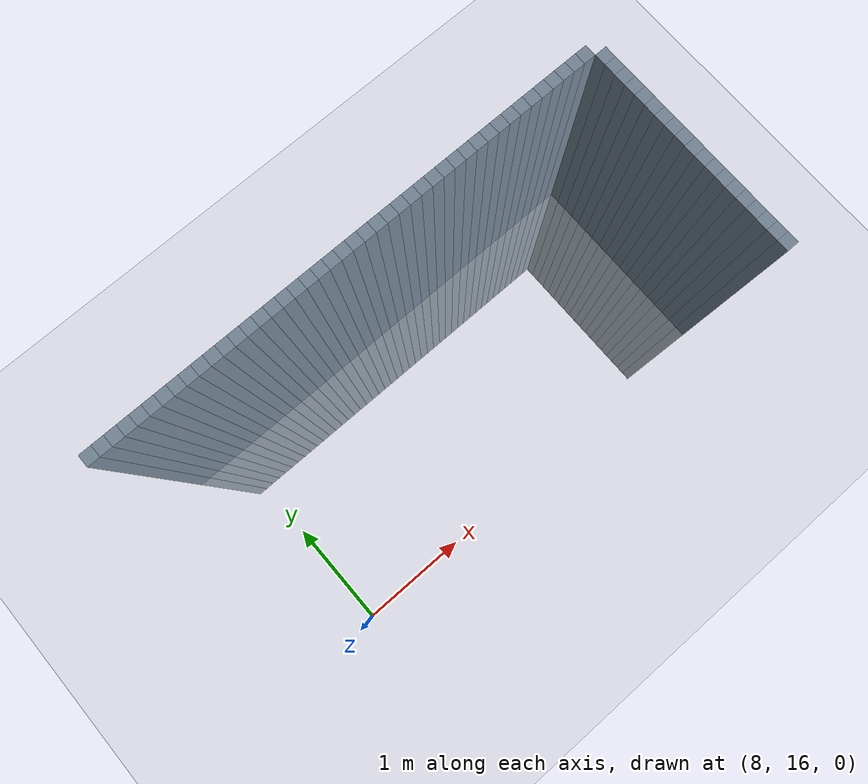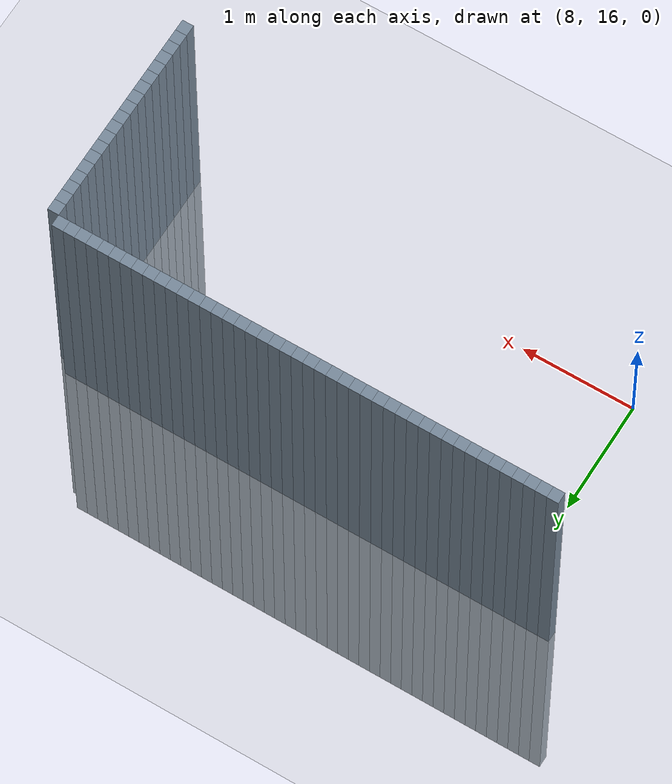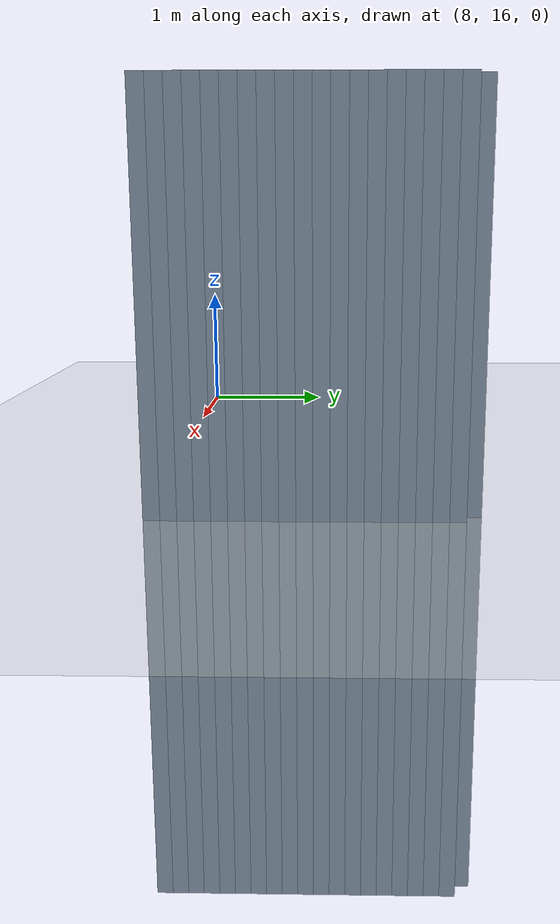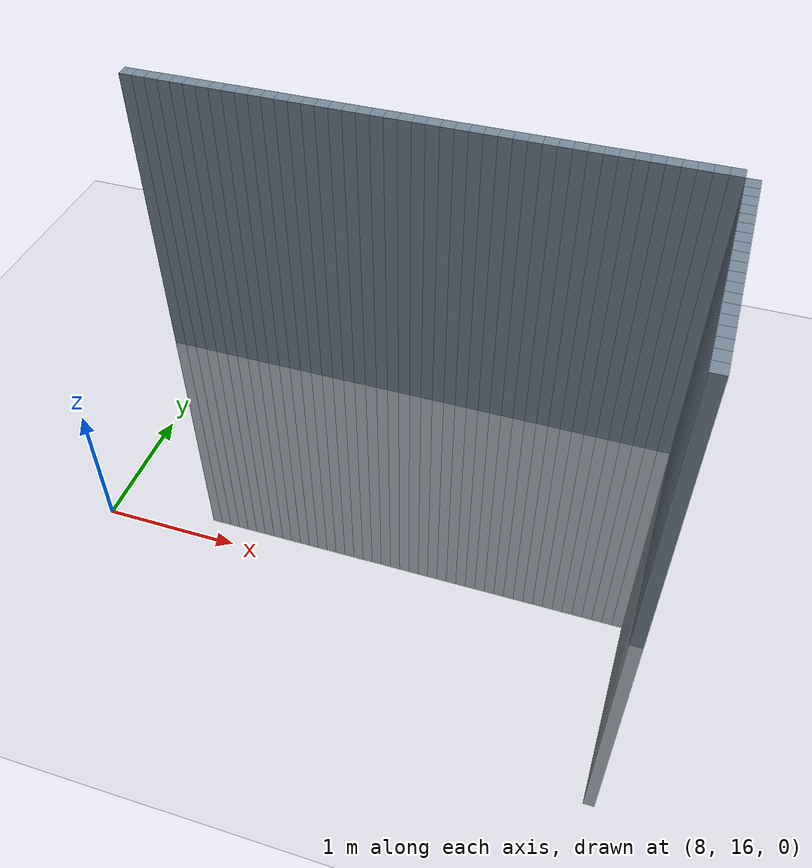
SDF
<sdf version="1.6">
 <world name="default">
  <model name="ground_plane">
   <static>1</static>
   <link name="link">
    <collision name="collision">
     <geometry><plane><normal>0 0 1</normal><size>100 100</size></plane></geometry>
     <surface><friction><ode><mu>100</mu><mu2>50</mu2></ode></friction></surface>
    </collision>
    <visual name="visual">
     <cast_shadows>0</cast_shadows>
     <geometry><plane><normal>0 0 1</normal><size>100 100</size></plane></geometry>
     <material>
      <script><uri>file://media/materials/scripts/gazebo.material</uri><name>Gazebo/Grey</name></script>
     </material>
    </visual>
   </link>
  </model>
  <model name="unit_cylinder_425">
   <static>1</static>
   <pose>7.6 18 0 0 -0 0</pose>
   <link name="link">
    <inertial>
     <mass>1</mass>
     <inertia><ixx>0.145833</ixx><ixy>0</ixy><ixz>0</ixz><iyy>0.145833</iyy><iyz>0</iyz><izz>0.125</izz></inertia>
    </inertial>
    <collision name="collision"><geometry><box><size>0.1 0.1 5</size></box></geometry></collision>
    <visual name="visual">
     <geometry><box><size>0.1 0.1 5</size></box></geometry>
     <material><ambient>0.466667 0.533333 0.6 1</ambient><diffuse>0.466667 0.533333 0.6 1</diffuse></material>
     <material>
      <script><name>Gazebo/Grey</name><uri>file://media/materials/scripts/gazebo.material</uri></script>
     </material>
    </visual>
   </link>
  </model>
  <model name="unit_cylinder_429">
   <static>1</static>
   <pose>7.7 18 0 0 -0 0</pose>
   <link name="link">
    <inertial>
     <mass>1</mass>
     <inertia><ixx>0.145833</ixx><ixy>0</ixy><ixz>0</ixz><iyy>0.145833</iyy><iyz>0</iyz><izz>0.125</izz></inertia>
    </inertial>
    <collision name="collision"><geometry><box><size>0.1 0.1 5</size></box></geometry></collision>
    <visual name="visual">
     <geometry><box><size>0.1 0.1 5</size></box></geometry>
     <material><ambient>0.466667 0.533333 0.6 1</ambient><diffuse>0.466667 0.533333 0.6 1</diffuse></material>
     <material>
      <script><name>Gazebo/Grey</name><uri>file://media/materials/scripts/gazebo.material</uri></script>
     </material>
    </visual>
   </link>
  </model>
  <model name="unit_cylinder_433">
   <static>1</static>
   <pose>7.8 18 0 0 -0 0</pose>
   <link name="link">
    <inertial>
     <mass>1</mass>
     <inertia><ixx>0.145833</ixx><ixy>0</ixy><ixz>0</ixz><iyy>0.145833</iyy><iyz>0</iyz><izz>0.125</izz></inertia>
    </inertial>
    <collision name="collision"><geometry><box><size>0.1 0.1 5</size></box></geometry></collision>
    <visual name="visual">
     <geometry><box><size>0.1 0.1 5</size></box></geometry>
     <material><ambient>0.466667 0.533333 0.6 1</ambient><diffuse>0.466667 0.533333 0.6 1</diffuse></material>
     <material>
      <script><name>Gazebo/Grey</name><uri>file://media/materials/scripts/gazebo.material</uri></script>
     </material>
    </visual>
   </link>
  </model>
  <model name="unit_cylinder_437">
   <static>1</static>
   <pose>7.9 18 0 0 -0 0</pose>
   <link name="link">
    <inertial>
     <mass>1</mass>
     <inertia><ixx>0.145833</ixx><ixy>0</ixy><ixz>0</ixz><iyy>0.145833</iyy><iyz>0</iyz><izz>0.125</izz></inertia>
    </inertial>
    <collision name="collision"><geometry><box><size>0.1 0.1 5</size></box></geometry></collision>
    <visual name="visual">
     <geometry><box><size>0.1 0.1 5</size></box></geometry>
     <material><ambient>0.466667 0.533333 0.6 1</ambient><diffuse>0.466667 0.533333 0.6 1</diffuse></material>
     <material>
      <script><name>Gazebo/Grey</name><uri>file://media/materials/scripts/gazebo.material</uri></script>
     </material>
    </visual>
   </link>
  </model>
  <model name="unit_cylinder_441">
   <static>1</static>
   <pose>8 18 0 0 -0 0</pose>
   <link name="link">
    <inertial>
     <mass>1</mass>
     <inertia><ixx>0.145833</ixx><ixy>0</ixy><ixz>0</ixz><iyy>0.145833</iyy><iyz>0</iyz><izz>0.125</izz></inertia>
    </inertial>
    <collision name="collision"><geometry><box><size>0.1 0.1 5</size></box></geometry></collision>
    <visual name="visual">
     <geometry><box><size>0.1 0.1 5</size></box></geometry>
     <material><ambient>0.466667 0.533333 0.6 1</ambient><diffuse>0.466667 0.533333 0.6 1</diffuse></material>
     <material>
      <script><name>Gazebo/Grey</name><uri>file://media/materials/scripts/gazebo.material</uri></script>
     </material>
    </visual>
   </link>
  </model>
  <model name="unit_cylinder_445">
   <static>1</static>
   <pose>8.1 18 0 0 -0 0</pose>
   <link name="link">
    <inertial>
     <mass>1</mass>
     <inertia><ixx>0.145833</ixx><ixy>0</ixy><ixz>0</ixz><iyy>0.145833</iyy><iyz>0</iyz><izz>0.125</izz></inertia>
    </inertial>
    <collision name="collision"><geometry><box><size>0.1 0.1 5</size></box></geometry></collision>
    <visual name="visual">
     <geometry><box><size>0.1 0.1 5</size></box></geometry>
     <material><ambient>0.466667 0.533333 0.6 1</ambient><diffuse>0.466667 0.533333 0.6 1</diffuse></material>
     <material>
      <script><name>Gazebo/Grey</name><uri>file://media/materials/scripts/gazebo.material</uri></script>
     </material>
    </visual>
   </link>
  </model>
  <model name="unit_cylinder_449">
   <static>1</static>
   <pose>8.2 18 0 0 -0 0</pose>
   <link name="link">
    <inertial>
     <mass>1</mass>
     <inertia><ixx>0.145833</ixx><ixy>0</ixy><ixz>0</ixz><iyy>0.145833</iyy><iyz>0</iyz><izz>0.125</izz></inertia>
    </inertial>
    <collision name="collision"><geometry><box><size>0.1 0.1 5</size></box></geometry></collision>
    <visual name="visual">
     <geometry><box><size>0.1 0.1 5</size></box></geometry>
     <material><ambient>0.466667 0.533333 0.6 1</ambient><diffuse>0.466667 0.533333 0.6 1</diffuse></material>
     <material>
      <script><name>Gazebo/Grey</name><uri>file://media/materials/scripts/gazebo.material</uri></script>
     </material>
    </visual>
   </link>
  </model>
  <model name="unit_cylinder_453">
   <static>1</static>
   <pose>8.3 18 0 0 -0 0</pose>
   <link name="link">
    <inertial>
     <mass>1</mass>
     <inertia><ixx>0.145833</ixx><ixy>0</ixy><ixz>0</ixz><iyy>0.145833</iyy><iyz>0</iyz><izz>0.125</izz></inertia>
    </inertial>
    <collision name="collision"><geometry><box><size>0.1 0.1 5</size></box></geometry></collision>
    <visual name="visual">
     <geometry><box><size>0.1 0.1 5</size></box></geometry>
     <material><ambient>0.466667 0.533333 0.6 1</ambient><diffuse>0.466667 0.533333 0.6 1</diffuse></material>
     <material>
      <script><name>Gazebo/Grey</name><uri>file://media/materials/scripts/gazebo.material</uri></script>
     </material>
    </visual>
   </link>
  </model>
  <model name="unit_cylinder_457">
   <static>1</static>
   <pose>8.4 18 0 0 -0 0</pose>
   <link name="link">
    <inertial>
     <mass>1</mass>
     <inertia><ixx>0.145833</ixx><ixy>0</ixy><ixz>0</ixz><iyy>0.145833</iyy><iyz>0</iyz><izz>0.125</izz></inertia>
    </inertial>
    <collision name="collision"><geometry><box><size>0.1 0.1 5</size></box></geometry></collision>
    <visual name="visual">
     <geometry><box><size>0.1 0.1 5</size></box></geometry>
     <material><ambient>0.466667 0.533333 0.6 1</ambient><diffuse>0.466667 0.533333 0.6 1</diffuse></material>
     <material>
      <script><name>Gazebo/Grey</name><uri>file://media/materials/scripts/gazebo.material</uri></script>
     </material>
    </visual>
   </link>
  </model>
  <model name="unit_cylinder_461">
   <static>1</static>
   <pose>8.5 18 0 0 -0 0</pose>
   <link name="link">
    <inertial>
     <mass>1</mass>
     <inertia><ixx>0.145833</ixx><ixy>0</ixy><ixz>0</ixz><iyy>0.145833</iyy><iyz>0</iyz><izz>0.125</izz></inertia>
    </inertial>
    <collision name="collision"><geometry><box><size>0.1 0.1 5</size></box></geometry></collision>
    <visual name="visual">
     <geometry><box><size>0.1 0.1 5</size></box></geometry>
     <material><ambient>0.466667 0.533333 0.6 1</ambient><diffuse>0.466667 0.533333 0.6 1</diffuse></material>
     <material>
      <script><name>Gazebo/Grey</name><uri>file://media/materials/scripts/gazebo.material</uri></script>
     </material>
    </visual>
   </link>
  </model>
  <model name="unit_cylinder_465">
   <static>1</static>
   <pose>8.6 18 0 0 -0 0</pose>
   <link name="link">
    <inertial>
     <mass>1</mass>
     <inertia><ixx>0.145833</ixx><ixy>0</ixy><ixz>0</ixz><iyy>0.145833</iyy><iyz>0</iyz><izz>0.125</izz></inertia>
    </inertial>
    <collision name="collision"><geometry><box><size>0.1 0.1 5</size></box></geometry></collision>
    <visual name="visual">
     <geometry><box><size>0.1 0.1 5</size></box></geometry>
     <material><ambient>0.466667 0.533333 0.6 1</ambient><diffuse>0.466667 0.533333 0.6 1</diffuse></material>
     <material>
      <script><name>Gazebo/Grey</name><uri>file://media/materials/scripts/gazebo.material</uri></script>
     </material>
    </visual>
   </link>
  </model>
  <model name="unit_cylinder_469">
   <static>1</static>
   <pose>8.7 18 0 0 -0 0</pose>
   <link name="link">
    <inertial>
     <mass>1</mass>
     <inertia><ixx>0.145833</ixx><ixy>0</ixy><ixz>0</ixz><iyy>0.145833</iyy><iyz>0</iyz><izz>0.125</izz></inertia>
    </inertial>
    <collision name="collision"><geometry><box><size>0.1 0.1 5</size></box></geometry></collision>
    <visual name="visual">
     <geometry><box><size>0.1 0.1 5</size></box></geometry>
     <material><ambient>0.466667 0.533333 0.6 1</ambient><diffuse>0.466667 0.533333 0.6 1</diffuse></material>
     <material>
      <script><name>Gazebo/Grey</name><uri>file://media/materials/scripts/gazebo.material</uri></script>
     </material>
    </visual>
   </link>
  </model>
  <model name="unit_cylinder_473">
   <static>1</static>
   <pose>8.8 18 0 0 -0 0</pose>
   <link name="link">
    <inertial>
     <mass>1</mass>
     <inertia><ixx>0.145833</ixx><ixy>0</ixy><ixz>0</ixz><iyy>0.145833</iyy><iyz>0</iyz><izz>0.125</izz></inertia>
    </inertial>
    <collision name="collision"><geometry><box><size>0.1 0.1 5</size></box></geometry></collision>
    <visual name="visual">
     <geometry><box><size>0.1 0.1 5</size></box></geometry>
     <material><ambient>0.466667 0.533333 0.6 1</ambient><diffuse>0.466667 0.533333 0.6 1</diffuse></material>
     <material>
      <script><name>Gazebo/Grey</name><uri>file://media/materials/scripts/gazebo.material</uri></script>
     </material>
    </visual>
   </link>
  </model>
  <model name="unit_cylinder_477">
   <static>1</static>
   <pose>8.9 18 0 0 -0 0</pose>
   <link name="link">
    <inertial>
     <mass>1</mass>
     <inertia><ixx>0.145833</ixx><ixy>0</ixy><ixz>0</ixz><iyy>0.145833</iyy><iyz>0</iyz><izz>0.125</izz></inertia>
    </inertial>
    <collision name="collision"><geometry><box><size>0.1 0.1 5</size></box></geometry></collision>
    <visual name="visual">
     <geometry><box><size>0.1 0.1 5</size></box></geometry>
     <material><ambient>0.466667 0.533333 0.6 1</ambient><diffuse>0.466667 0.533333 0.6 1</diffuse></material>
     <material>
      <script><name>Gazebo/Grey</name><uri>file://media/materials/scripts/gazebo.material</uri></script>
     </material>
    </visual>
   </link>
  </model>
  <model name="unit_cylinder_481">
   <static>1</static>
   <pose>9 18 0 0 -0 0</pose>
   <link name="link">
    <inertial>
     <mass>1</mass>
     <inertia><ixx>0.145833</ixx><ixy>0</ixy><ixz>0</ixz><iyy>0.145833</iyy><iyz>0</iyz><izz>0.125</izz></inertia>
    </inertial>
    <collision name="collision"><geometry><box><size>0.1 0.1 5</size></box></geometry></collision>
    <visual name="visual">
     <geometry><box><size>0.1 0.1 5</size></box></geometry>
     <material><ambient>0.466667 0.533333 0.6 1</ambient><diffuse>0.466667 0.533333 0.6 1</diffuse></material>
     <material>
      <script><name>Gazebo/Grey</name><uri>file://media/materials/scripts/gazebo.material</uri></script>
     </material>
    </visual>
   </link>
  </model>
  <model name="unit_cylinder_485">
   <static>1</static>
   <pose>9.1 18 0 0 -0 0</pose>
   <link name="link">
    <inertial>
     <mass>1</mass>
     <inertia><ixx>0.145833</ixx><ixy>0</ixy><ixz>0</ixz><iyy>0.145833</iyy><iyz>0</iyz><izz>0.125</izz></inertia>
    </inertial>
    <collision name="collision"><geometry><box><size>0.1 0.1 5</size></box></geometry></collision>
    <visual name="visual">
     <geometry><box><size>0.1 0.1 5</size></box></geometry>
     <material><ambient>0.466667 0.533333 0.6 1</ambient><diffuse>0.466667 0.533333 0.6 1</diffuse></material>
     <material>
      <script><name>Gazebo/Grey</name><uri>file://media/materials/scripts/gazebo.material</uri></script>
     </material>
    </visual>
   </link>
  </model>
  <model name="unit_cylinder_489">
   <static>1</static>
   <pose>9.2 18 0 0 -0 0</pose>
   <link name="link">
    <inertial>
     <mass>1</mass>
     <inertia><ixx>0.145833</ixx><ixy>0</ixy><ixz>0</ixz><iyy>0.145833</iyy><iyz>0</iyz><izz>0.125</izz></inertia>
    </inertial>
    <collision name="collision"><geometry><box><size>0.1 0.1 5</size></box></geometry></collision>
    <visual name="visual">
     <geometry><box><size>0.1 0.1 5</size></box></geometry>
     <material><ambient>0.466667 0.533333 0.6 1</ambient><diffuse>0.466667 0.533333 0.6 1</diffuse></material>
     <material>
      <script><name>Gazebo/Grey</name><uri>file://media/materials/scripts/gazebo.material</uri></script>
     </material>
    </visual>
   </link>
  </model>
  <model name="unit_cylinder_493">
   <static>1</static>
   <pose>9.3 18 0 0 -0 0</pose>
   <link name="link">
    <inertial>
     <mass>1</mass>
     <inertia><ixx>0.145833</ixx><ixy>0</ixy><ixz>0</ixz><iyy>0.145833</iyy><iyz>0</iyz><izz>0.125</izz></inertia>
    </inertial>
    <collision name="collision"><geometry><box><size>0.1 0.1 5</size></box></geometry></collision>
    <visual name="visual">
     <geometry><box><size>0.1 0.1 5</size></box></geometry>
     <material><ambient>0.466667 0.533333 0.6 1</ambient><diffuse>0.466667 0.533333 0.6 1</diffuse></material>
     <material>
      <script><name>Gazebo/Grey</name><uri>file://media/materials/scripts/gazebo.material</uri></script>
     </material>
    </visual>
   </link>
  </model>
  <model name="unit_cylinder_497">
   <static>1</static>
   <pose>9.4 18 0 0 -0 0</pose>
   <link name="link">
    <inertial>
     <mass>1</mass>
     <inertia><ixx>0.145833</ixx><ixy>0</ixy><ixz>0</ixz><iyy>0.145833</iyy><iyz>0</iyz><izz>0.125</izz></inertia>
    </inertial>
    <collision name="collision"><geometry><box><size>0.1 0.1 5</size></box></geometry></collision>
    <visual name="visual">
     <geometry><box><size>0.1 0.1 5</size></box></geometry>
     <material><ambient>0.466667 0.533333 0.6 1</ambient><diffuse>0.466667 0.533333 0.6 1</diffuse></material>
     <material>
      <script><name>Gazebo/Grey</name><uri>file://media/materials/scripts/gazebo.material</uri></script>
     </material>
    </visual>
   </link>
  </model>
  <model name="unit_cylinder_501">
   <static>1</static>
   <pose>9.5 18 0 0 -0 0</pose>
   <link name="link">
    <inertial>
     <mass>1</mass>
     <inertia><ixx>0.145833</ixx><ixy>0</ixy><ixz>0</ixz><iyy>0.145833</iyy><iyz>0</iyz><izz>0.125</izz></inertia>
    </inertial>
    <collision name="collision"><geometry><box><size>0.1 0.1 5</size></box></geometry></collision>
    <visual name="visual">
     <geometry><box><size>0.1 0.1 5</size></box></geometry>
     <material><ambient>0.466667 0.533333 0.6 1</ambient><diffuse>0.466667 0.533333 0.6 1</diffuse></material>
     <material>
      <script><name>Gazebo/Grey</name><uri>file://media/materials/scripts/gazebo.material</uri></script>
     </material>
    </visual>
   </link>
  </model>
  <model name="unit_cylinder_505">
   <static>1</static>
   <pose>9.6 18 0 0 -0 0</pose>
   <link name="link">
    <inertial>
     <mass>1</mass>
     <inertia><ixx>0.145833</ixx><ixy>0</ixy><ixz>0</ixz><iyy>0.145833</iyy><iyz>0</iyz><izz>0.125</izz></inertia>
    </inertial>
    <collision name="collision"><geometry><box><size>0.1 0.1 5</size></box></geometry></collision>
    <visual name="visual">
     <geometry><box><size>0.1 0.1 5</size></box></geometry>
     <material><ambient>0.466667 0.533333 0.6 1</ambient><diffuse>0.466667 0.533333 0.6 1</diffuse></material>
     <material>
      <script><name>Gazebo/Grey</name><uri>file://media/materials/scripts/gazebo.material</uri></script>
     </material>
    </visual>
   </link>
  </model>
  <model name="unit_cylinder_509">
   <static>1</static>
   <pose>9.7 18 0 0 -0 0</pose>
   <link name="link">
    <inertial>
     <mass>1</mass>
     <inertia><ixx>0.145833</ixx><ixy>0</ixy><ixz>0</ixz><iyy>0.145833</iyy><iyz>0</iyz><izz>0.125</izz></inertia>
    </inertial>
    <collision name="collision"><geometry><box><size>0.1 0.1 5</size></box></geometry></collision>
    <visual name="visual">
     <geometry><box><size>0.1 0.1 5</size></box></geometry>
     <material><ambient>0.466667 0.533333 0.6 1</ambient><diffuse>0.466667 0.533333 0.6 1</diffuse></material>
     <material>
      <script><name>Gazebo/Grey</name><uri>file://media/materials/scripts/gazebo.material</uri></script>
     </material>
    </visual>
   </link>
  </model>
  <model name="unit_cylinder_513">
   <static>1</static>
   <pose>9.8 18 0 0 -0 0</pose>
   <link name="link">
    <inertial>
     <mass>1</mass>
     <inertia><ixx>0.145833</ixx><ixy>0</ixy><ixz>0</ixz><iyy>0.145833</iyy><iyz>0</iyz><izz>0.125</izz></inertia>
    </inertial>
    <collision name="collision"><geometry><box><size>0.1 0.1 5</size></box></geometry></collision>
    <visual name="visual">
     <geometry><box><size>0.1 0.1 5</size></box></geometry>
     <material><ambient>0.466667 0.533333 0.6 1</ambient><diffuse>0.466667 0.533333 0.6 1</diffuse></material>
     <material>
      <script><name>Gazebo/Grey</name><uri>file://media/materials/scripts/gazebo.material</uri></script>
     </material>
    </visual>
   </link>
  </model>
  <model name="unit_cylinder_517">
   <static>1</static>
   <pose>9.9 18 0 0 -0 0</pose>
   <link name="link">
    <inertial>
     <mass>1</mass>
     <inertia><ixx>0.145833</ixx><ixy>0</ixy><ixz>0</ixz><iyy>0.145833</iyy><iyz>0</iyz><izz>0.125</izz></inertia>
    </inertial>
    <collision name="collision"><geometry><box><size>0.1 0.1 5</size></box></geometry></collision>
    <visual name="visual">
     <geometry><box><size>0.1 0.1 5</size></box></geometry>
     <material><ambient>0.466667 0.533333 0.6 1</ambient><diffuse>0.466667 0.533333 0.6 1</diffuse></material>
     <material>
      <script><name>Gazebo/Grey</name><uri>file://media/materials/scripts/gazebo.material</uri></script>
     </material>
    </visual>
   </link>
  </model>
  <model name="unit_cylinder_521">
   <static>1</static>
   <pose>10 18 0 0 -0 0</pose>
   <link name="link">
    <inertial>
     <mass>1</mass>
     <inertia><ixx>0.145833</ixx><ixy>0</ixy><ixz>0</ixz><iyy>0.145833</iyy><iyz>0</iyz><izz>0.125</izz></inertia>
    </inertial>
    <collision name="collision"><geometry><box><size>0.1 0.1 5</size></box></geometry></collision>
    <visual name="visual">
     <geometry><box><size>0.1 0.1 5</size></box></geometry>
     <material><ambient>0.466667 0.533333 0.6 1</ambient><diffuse>0.466667 0.533333 0.6 1</diffuse></material>
     <material>
      <script><name>Gazebo/Grey</name><uri>file://media/materials/scripts/gazebo.material</uri></script>
     </material>
    </visual>
   </link>
  </model>
  <model name="unit_cylinder_525">
   <static>1</static>
   <pose>10.1 18 0 0 -0 0</pose>
   <link name="link">
    <inertial>
     <mass>1</mass>
     <inertia><ixx>0.145833</ixx><ixy>0</ixy><ixz>0</ixz><iyy>0.145833</iyy><iyz>0</iyz><izz>0.125</izz></inertia>
    </inertial>
    <collision name="collision"><geometry><box><size>0.1 0.1 5</size></box></geometry></collision>
    <visual name="visual">
     <geometry><box><size>0.1 0.1 5</size></box></geometry>
     <material><ambient>0.466667 0.533333 0.6 1</ambient><diffuse>0.466667 0.533333 0.6 1</diffuse></material>
     <material>
      <script><name>Gazebo/Grey</name><uri>file://media/materials/scripts/gazebo.material</uri></script>
     </material>
    </visual>
   </link>
  </model>
  <model name="unit_cylinder_529">
   <static>1</static>
   <pose>10.2 18 0 0 -0 0</pose>
   <link name="link">
    <inertial>
     <mass>1</mass>
     <inertia><ixx>0.145833</ixx><ixy>0</ixy><ixz>0</ixz><iyy>0.145833</iyy><iyz>0</iyz><izz>0.125</izz></inertia>
    </inertial>
    <collision name="collision"><geometry><box><size>0.1 0.1 5</size></box></geometry></collision>
    <visual name="visual">
     <geometry><box><size>0.1 0.1 5</size></box></geometry>
     <material><ambient>0.466667 0.533333 0.6 1</ambient><diffuse>0.466667 0.533333 0.6 1</diffuse></material>
     <material>
      <script><name>Gazebo/Grey</name><uri>file://media/materials/scripts/gazebo.material</uri></script>
     </material>
    </visual>
   </link>
  </model>
  <model name="unit_cylinder_533">
   <static>1</static>
   <pose>10.3 18 0 0 -0 0</pose>
   <link name="link">
    <inertial>
     <mass>1</mass>
     <inertia><ixx>0.145833</ixx><ixy>0</ixy><ixz>0</ixz><iyy>0.145833</iyy><iyz>0</iyz><izz>0.125</izz></inertia>
    </inertial>
    <collision name="collision"><geometry><box><size>0.1 0.1 5</size></box></geometry></collision>
    <visual name="visual">
     <geometry><box><size>0.1 0.1 5</size></box></geometry>
     <material><ambient>0.466667 0.533333 0.6 1</ambient><diffuse>0.466667 0.533333 0.6 1</diffuse></material>
     <material>
      <script><name>Gazebo/Grey</name><uri>file://media/materials/scripts/gazebo.material</uri></script>
     </material>
    </visual>
   </link>
  </model>
  <model name="unit_cylinder_537">
   <static>1</static>
   <pose>10.4 18 0 0 -0 0</pose>
   <link name="link">
    <inertial>
     <mass>1</mass>
     <inertia><ixx>0.145833</ixx><ixy>0</ixy><ixz>0</ixz><iyy>0.145833</iyy><iyz>0</iyz><izz>0.125</izz></inertia>
    </inertial>
    <collision name="collision"><geometry><box><size>0.1 0.1 5</size></box></geometry></collision>
    <visual name="visual">
     <geometry><box><size>0.1 0.1 5</size></box></geometry>
     <material><ambient>0.466667 0.533333 0.6 1</ambient><diffuse>0.466667 0.533333 0.6 1</diffuse></material>
     <material>
      <script><name>Gazebo/Grey</name><uri>file://media/materials/scripts/gazebo.material</uri></script>
     </material>
    </visual>
   </link>
  </model>
  <model name="unit_cylinder_541">
   <static>1</static>
   <pose>10.5 18 0 0 -0 0</pose>
   <link name="link">
    <inertial>
     <mass>1</mass>
     <inertia><ixx>0.145833</ixx><ixy>0</ixy><ixz>0</ixz><iyy>0.145833</iyy><iyz>0</iyz><izz>0.125</izz></inertia>
    </inertial>
    <collision name="collision"><geometry><box><size>0.1 0.1 5</size></box></geometry></collision>
    <visual name="visual">
     <geometry><box><size>0.1 0.1 5</size></box></geometry>
     <material><ambient>0.466667 0.533333 0.6 1</ambient><diffuse>0.466667 0.533333 0.6 1</diffuse></material>
     <material>
      <script><name>Gazebo/Grey</name><uri>file://media/materials/scripts/gazebo.material</uri></script>
     </material>
    </visual>
   </link>
  </model>
  <model name="unit_cylinder_545">
   <static>1</static>
   <pose>10.6 18 0 0 -0 0</pose>
   <link name="link">
    <inertial>
     <mass>1</mass>
     <inertia><ixx>0.145833</ixx><ixy>0</ixy><ixz>0</ixz><iyy>0.145833</iyy><iyz>0</iyz><izz>0.125</izz></inertia>
    </inertial>
    <collision name="collision"><geometry><box><size>0.1 0.1 5</size></box></geometry></collision>
    <visual name="visual">
     <geometry><box><size>0.1 0.1 5</size></box></geometry>
     <material><ambient>0.466667 0.533333 0.6 1</ambient><diffuse>0.466667 0.533333 0.6 1</diffuse></material>
     <material>
      <script><name>Gazebo/Grey</name><uri>file://media/materials/scripts/gazebo.material</uri></script>
     </material>
    </visual>
   </link>
  </model>
  <model name="unit_cylinder_549">
   <static>1</static>
   <pose>10.7 18 0 0 -0 0</pose>
   <link name="link">
    <inertial>
     <mass>1</mass>
     <inertia><ixx>0.145833</ixx><ixy>0</ixy><ixz>0</ixz><iyy>0.145833</iyy><iyz>0</iyz><izz>0.125</izz></inertia>
    </inertial>
    <collision name="collision"><geometry><box><size>0.1 0.1 5</size></box></geometry></collision>
    <visual name="visual">
     <geometry><box><size>0.1 0.1 5</size></box></geometry>
     <material><ambient>0.466667 0.533333 0.6 1</ambient><diffuse>0.466667 0.533333 0.6 1</diffuse></material>
     <material>
      <script><name>Gazebo/Grey</name><uri>file://media/materials/scripts/gazebo.material</uri></script>
     </material>
    </visual>
   </link>
  </model>
  <model name="unit_cylinder_553">
   <static>1</static>
   <pose>10.8 18 0 0 -0 0</pose>
   <link name="link">
    <inertial>
     <mass>1</mass>
     <inertia><ixx>0.145833</ixx><ixy>0</ixy><ixz>0</ixz><iyy>0.145833</iyy><iyz>0</iyz><izz>0.125</izz></inertia>
    </inertial>
    <collision name="collision"><geometry><box><size>0.1 0.1 5</size></box></geometry></collision>
    <visual name="visual">
     <geometry><box><size>0.1 0.1 5</size></box></geometry>
     <material><ambient>0.466667 0.533333 0.6 1</ambient><diffuse>0.466667 0.533333 0.6 1</diffuse></material>
     <material>
      <script><name>Gazebo/Grey</name><uri>file://media/materials/scripts/gazebo.material</uri></script>
     </material>
    </visual>
   </link>
  </model>
  <model name="unit_cylinder_557">
   <static>1</static>
   <pose>10.9 18 0 0 -0 0</pose>
   <link name="link">
    <inertial>
     <mass>1</mass>
     <inertia><ixx>0.145833</ixx><ixy>0</ixy><ixz>0</ixz><iyy>0.145833</iyy><iyz>0</iyz><izz>0.125</izz></inertia>
    </inertial>
    <collision name="collision"><geometry><box><size>0.1 0.1 5</size></box></geometry></collision>
    <visual name="visual">
     <geometry><box><size>0.1 0.1 5</size></box></geometry>
     <material><ambient>0.466667 0.533333 0.6 1</ambient><diffuse>0.466667 0.533333 0.6 1</diffuse></material>
     <material>
      <script><name>Gazebo/Grey</name><uri>file://media/materials/scripts/gazebo.material</uri></script>
     </material>
    </visual>
   </link>
  </model>
  <model name="unit_cylinder_561">
   <static>1</static>
   <pose>11 18 0 0 -0 0</pose>
   <link name="link">
    <inertial>
     <mass>1</mass>
     <inertia><ixx>0.145833</ixx><ixy>0</ixy><ixz>0</ixz><iyy>0.145833</iyy><iyz>0</iyz><izz>0.125</izz></inertia>
    </inertial>
    <collision name="collision"><geometry><box><size>0.1 0.1 5</size></box></geometry></collision>
    <visual name="visual">
     <geometry><box><size>0.1 0.1 5</size></box></geometry>
     <material><ambient>0.466667 0.533333 0.6 1</ambient><diffuse>0.466667 0.533333 0.6 1</diffuse></material>
     <material>
      <script><name>Gazebo/Grey</name><uri>file://media/materials/scripts/gazebo.material</uri></script>
     </material>
    </visual>
   </link>
  </model>
  <model name="unit_cylinder_565">
   <static>1</static>
   <pose>11.1 18 0 0 -0 0</pose>
   <link name="link">
    <inertial>
     <mass>1</mass>
     <inertia><ixx>0.145833</ixx><ixy>0</ixy><ixz>0</ixz><iyy>0.145833</iyy><iyz>0</iyz><izz>0.125</izz></inertia>
    </inertial>
    <collision name="collision"><geometry><box><size>0.1 0.1 5</size></box></geometry></collision>
    <visual name="visual">
     <geometry><box><size>0.1 0.1 5</size></box></geometry>
     <material><ambient>0.466667 0.533333 0.6 1</ambient><diffuse>0.466667 0.533333 0.6 1</diffuse></material>
     <material>
      <script><name>Gazebo/Grey</name><uri>file://media/materials/scripts/gazebo.material</uri></script>
     </material>
    </visual>
   </link>
  </model>
  <model name="unit_cylinder_569">
   <static>1</static>
   <pose>11.2 18 0 0 -0 0</pose>
   <link name="link">
    <inertial>
     <mass>1</mass>
     <inertia><ixx>0.145833</ixx><ixy>0</ixy><ixz>0</ixz><iyy>0.145833</iyy><iyz>0</iyz><izz>0.125</izz></inertia>
    </inertial>
    <collision name="collision"><geometry><box><size>0.1 0.1 5</size></box></geometry></collision>
    <visual name="visual">
     <geometry><box><size>0.1 0.1 5</size></box></geometry>
     <material><ambient>0.466667 0.533333 0.6 1</ambient><diffuse>0.466667 0.533333 0.6 1</diffuse></material>
     <material>
      <script><name>Gazebo/Grey</name><uri>file://media/materials/scripts/gazebo.material</uri></script>
     </material>
    </visual>
   </link>
  </model>
  <model name="unit_cylinder_573">
   <static>1</static>
   <pose>11.3 18 0 0 -0 0</pose>
   <link name="link">
    <inertial>
     <mass>1</mass>
     <inertia><ixx>0.145833</ixx><ixy>0</ixy><ixz>0</ixz><iyy>0.145833</iyy><iyz>0</iyz><izz>0.125</izz></inertia>
    </inertial>
    <collision name="collision"><geometry><box><size>0.1 0.1 5</size></box></geometry></collision>
    <visual name="visual">
     <geometry><box><size>0.1 0.1 5</size></box></geometry>
     <material><ambient>0.466667 0.533333 0.6 1</ambient><diffuse>0.466667 0.533333 0.6 1</diffuse></material>
     <material>
      <script><name>Gazebo/Grey</name><uri>file://media/materials/scripts/gazebo.material</uri></script>
     </material>
    </visual>
   </link>
  </model>
  <model name="unit_cylinder_577">
   <static>1</static>
   <pose>11.4 18 0 0 -0 0</pose>
   <link name="link">
    <inertial>
     <mass>1</mass>
     <inertia><ixx>0.145833</ixx><ixy>0</ixy><ixz>0</ixz><iyy>0.145833</iyy><iyz>0</iyz><izz>0.125</izz></inertia>
    </inertial>
    <collision name="collision"><geometry><box><size>0.1 0.1 5</size></box></geometry></collision>
    <visual name="visual">
     <geometry><box><size>0.1 0.1 5</size></box></geometry>
     <material><ambient>0.466667 0.533333 0.6 1</ambient><diffuse>0.466667 0.533333 0.6 1</diffuse></material>
     <material>
      <script><name>Gazebo/Grey</name><uri>file://media/materials/scripts/gazebo.material</uri></script>
     </material>
    </visual>
   </link>
  </model>
  <model name="unit_cylinder_581">
   <static>1</static>
   <pose>11.5 18 0 0 -0 0</pose>
   <link name="link">
    <inertial>
     <mass>1</mass>
     <inertia><ixx>0.145833</ixx><ixy>0</ixy><ixz>0</ixz><iyy>0.145833</iyy><iyz>0</iyz><izz>0.125</izz></inertia>
    </inertial>
    <collision name="collision"><geometry><box><size>0.1 0.1 5</size></box></geometry></collision>
    <visual name="visual">
     <geometry><box><size>0.1 0.1 5</size></box></geometry>
     <material><ambient>0.466667 0.533333 0.6 1</ambient><diffuse>0.466667 0.533333 0.6 1</diffuse></material>
     <material>
      <script><name>Gazebo/Grey</name><uri>file://media/materials/scripts/gazebo.material</uri></script>
     </material>
    </visual>
   </link>
  </model>
  <model name="unit_cylinder_585">
   <static>1</static>
   <pose>11.6 18 0 0 -0 0</pose>
   <link name="link">
    <inertial>
     <mass>1</mass>
     <inertia><ixx>0.145833</ixx><ixy>0</ixy><ixz>0</ixz><iyy>0.145833</iyy><iyz>0</iyz><izz>0.125</izz></inertia>
    </inertial>
    <collision name="collision"><geometry><box><size>0.1 0.1 5</size></box></geometry></collision>
    <visual name="visual">
     <geometry><box><size>0.1 0.1 5</size></box></geometry>
     <material><ambient>0.466667 0.533333 0.6 1</ambient><diffuse>0.466667 0.533333 0.6 1</diffuse></material>
     <material>
      <script><name>Gazebo/Grey</name><uri>file://media/materials/scripts/gazebo.material</uri></script>
     </material>
    </visual>
   </link>
  </model>
  <model name="unit_cylinder_589">
   <static>1</static>
   <pose>11.7 18 0 0 -0 0</pose>
   <link name="link">
    <inertial>
     <mass>1</mass>
     <inertia><ixx>0.145833</ixx><ixy>0</ixy><ixz>0</ixz><iyy>0.145833</iyy><iyz>0</iyz><izz>0.125</izz></inertia>
    </inertial>
    <collision name="collision"><geometry><box><size>0.1 0.1 5</size></box></geometry></collision>
    <visual name="visual">
     <geometry><box><size>0.1 0.1 5</size></box></geometry>
     <material><ambient>0.466667 0.533333 0.6 1</ambient><diffuse>0.466667 0.533333 0.6 1</diffuse></material>
     <material>
      <script><name>Gazebo/Grey</name><uri>file://media/materials/scripts/gazebo.material</uri></script>
     </material>
    </visual>
   </link>
  </model>
  <model name="unit_cylinder_593">
   <static>1</static>
   <pose>11.8 18 0 0 -0 0</pose>
   <link name="link">
    <inertial>
     <mass>1</mass>
     <inertia><ixx>0.145833</ixx><ixy>0</ixy><ixz>0</ixz><iyy>0.145833</iyy><iyz>0</iyz><izz>0.125</izz></inertia>
    </inertial>
    <collision name="collision"><geometry><box><size>0.1 0.1 5</size></box></geometry></collision>
    <visual name="visual">
     <geometry><box><size>0.1 0.1 5</size></box></geometry>
     <material><ambient>0.466667 0.533333 0.6 1</ambient><diffuse>0.466667 0.533333 0.6 1</diffuse></material>
     <material>
      <script><name>Gazebo/Grey</name><uri>file://media/materials/scripts/gazebo.material</uri></script>
     </material>
    </visual>
   </link>
  </model>
  <model name="unit_cylinder_597">
   <static>1</static>
   <pose>11.9 18 0 0 -0 0</pose>
   <link name="link">
    <inertial>
     <mass>1</mass>
     <inertia><ixx>0.145833</ixx><ixy>0</ixy><ixz>0</ixz><iyy>0.145833</iyy><iyz>0</iyz><izz>0.125</izz></inertia>
    </inertial>
    <collision name="collision"><geometry><box><size>0.1 0.1 5</size></box></geometry></collision>
    <visual name="visual">
     <geometry><box><size>0.1 0.1 5</size></box></geometry>
     <material><ambient>0.466667 0.533333 0.6 1</ambient><diffuse>0.466667 0.533333 0.6 1</diffuse></material>
     <material>
      <script><name>Gazebo/Grey</name><uri>file://media/materials/scripts/gazebo.material</uri></script>
     </material>
    </visual>
   </link>
  </model>
  <model name="unit_cylinder_759">
   <static>1</static>
   <pose>12 16.1 0 0 -0 0</pose>
   <link name="link">
    <inertial>
     <mass>1</mass>
     <inertia><ixx>0.145833</ixx><ixy>0</ixy><ixz>0</ixz><iyy>0.145833</iyy><iyz>0</iyz><izz>0.125</izz></inertia>
    </inertial>
    <collision name="collision"><geometry><box><size>0.1 0.1 5</size></box></geometry></collision>
    <visual name="visual">
     <geometry><box><size>0.1 0.1 5</size></box></geometry>
     <material><ambient>0.466667 0.533333 0.6 1</ambient><diffuse>0.466667 0.533333 0.6 1</diffuse></material>
     <material>
      <script><name>Gazebo/Grey</name><uri>file://media/materials/scripts/gazebo.material</uri></script>
     </material>
    </visual>
   </link>
  </model>
  <model name="unit_cylinder_760">
   <static>1</static>
   <pose>12 16.2 0 0 -0 0</pose>
   <link name="link">
    <inertial>
     <mass>1</mass>
     <inertia><ixx>0.145833</ixx><ixy>0</ixy><ixz>0</ixz><iyy>0.145833</iyy><iyz>0</iyz><izz>0.125</izz></inertia>
    </inertial>
    <collision name="collision"><geometry><box><size>0.1 0.1 5</size></box></geometry></collision>
    <visual name="visual">
     <geometry><box><size>0.1 0.1 5</size></box></geometry>
     <material><ambient>0.466667 0.533333 0.6 1</ambient><diffuse>0.466667 0.533333 0.6 1</diffuse></material>
     <material>
      <script><name>Gazebo/Grey</name><uri>file://media/materials/scripts/gazebo.material</uri></script>
     </material>
    </visual>
   </link>
  </model>
  <model name="unit_cylinder_761">
   <static>1</static>
   <pose>12 16.3 0 0 -0 0</pose>
   <link name="link">
    <inertial>
     <mass>1</mass>
     <inertia><ixx>0.145833</ixx><ixy>0</ixy><ixz>0</ixz><iyy>0.145833</iyy><iyz>0</iyz><izz>0.125</izz></inertia>
    </inertial>
    <collision name="collision"><geometry><box><size>0.1 0.1 5</size></box></geometry></collision>
    <visual name="visual">
     <geometry><box><size>0.1 0.1 5</size></box></geometry>
     <material><ambient>0.466667 0.533333 0.6 1</ambient><diffuse>0.466667 0.533333 0.6 1</diffuse></material>
     <material>
      <script><name>Gazebo/Grey</name><uri>file://media/materials/scripts/gazebo.material</uri></script>
     </material>
    </visual>
   </link>
  </model>
  <model name="unit_cylinder_762">
   <static>1</static>
   <pose>12 16.4 0 0 -0 0</pose>
   <link name="link">
    <inertial>
     <mass>1</mass>
     <inertia><ixx>0.145833</ixx><ixy>0</ixy><ixz>0</ixz><iyy>0.145833</iyy><iyz>0</iyz><izz>0.125</izz></inertia>
    </inertial>
    <collision name="collision"><geometry><box><size>0.1 0.1 5</size></box></geometry></collision>
    <visual name="visual">
     <geometry><box><size>0.1 0.1 5</size></box></geometry>
     <material><ambient>0.466667 0.533333 0.6 1</ambient><diffuse>0.466667 0.533333 0.6 1</diffuse></material>
     <material>
      <script><name>Gazebo/Grey</name><uri>file://media/materials/scripts/gazebo.material</uri></script>
     </material>
    </visual>
   </link>
  </model>
  <model name="unit_cylinder_763">
   <static>1</static>
   <pose>12 16.5 0 0 -0 0</pose>
   <link name="link">
    <inertial>
     <mass>1</mass>
     <inertia><ixx>0.145833</ixx><ixy>0</ixy><ixz>0</ixz><iyy>0.145833</iyy><iyz>0</iyz><izz>0.125</izz></inertia>
    </inertial>
    <collision name="collision"><geometry><box><size>0.1 0.1 5</size></box></geometry></collision>
    <visual name="visual">
     <geometry><box><size>0.1 0.1 5</size></box></geometry>
     <material><ambient>0.466667 0.533333 0.6 1</ambient><diffuse>0.466667 0.533333 0.6 1</diffuse></material>
     <material>
      <script><name>Gazebo/Grey</name><uri>file://media/materials/scripts/gazebo.material</uri></script>
     </material>
    </visual>
   </link>
  </model>
  <model name="unit_cylinder_764">
   <static>1</static>
   <pose>12 16.6 0 0 -0 0</pose>
   <link name="link">
    <inertial>
     <mass>1</mass>
     <inertia><ixx>0.145833</ixx><ixy>0</ixy><ixz>0</ixz><iyy>0.145833</iyy><iyz>0</iyz><izz>0.125</izz></inertia>
    </inertial>
    <collision name="collision"><geometry><box><size>0.1 0.1 5</size></box></geometry></collision>
    <visual name="visual">
     <geometry><box><size>0.1 0.1 5</size></box></geometry>
     <material><ambient>0.466667 0.533333 0.6 1</ambient><diffuse>0.466667 0.533333 0.6 1</diffuse></material>
     <material>
      <script><name>Gazebo/Grey</name><uri>file://media/materials/scripts/gazebo.material</uri></script>
     </material>
    </visual>
   </link>
  </model>
  <model name="unit_cylinder_765">
   <static>1</static>
   <pose>12 16.7 0 0 -0 0</pose>
   <link name="link">
    <inertial>
     <mass>1</mass>
     <inertia><ixx>0.145833</ixx><ixy>0</ixy><ixz>0</ixz><iyy>0.145833</iyy><iyz>0</iyz><izz>0.125</izz></inertia>
    </inertial>
    <collision name="collision"><geometry><box><size>0.1 0.1 5</size></box></geometry></collision>
    <visual name="visual">
     <geometry><box><size>0.1 0.1 5</size></box></geometry>
     <material><ambient>0.466667 0.533333 0.6 1</ambient><diffuse>0.466667 0.533333 0.6 1</diffuse></material>
     <material>
      <script><name>Gazebo/Grey</name><uri>file://media/materials/scripts/gazebo.material</uri></script>
     </material>
    </visual>
   </link>
  </model>
  <model name="unit_cylinder_766">
   <static>1</static>
   <pose>12 16.8 0 0 -0 0</pose>
   <link name="link">
    <inertial>
     <mass>1</mass>
     <inertia><ixx>0.145833</ixx><ixy>0</ixy><ixz>0</ixz><iyy>0.145833</iyy><iyz>0</iyz><izz>0.125</izz></inertia>
    </inertial>
    <collision name="collision"><geometry><box><size>0.1 0.1 5</size></box></geometry></collision>
    <visual name="visual">
     <geometry><box><size>0.1 0.1 5</size></box></geometry>
     <material><ambient>0.466667 0.533333 0.6 1</ambient><diffuse>0.466667 0.533333 0.6 1</diffuse></material>
     <material>
      <script><name>Gazebo/Grey</name><uri>file://media/materials/scripts/gazebo.material</uri></script>
     </material>
    </visual>
   </link>
  </model>
  <model name="unit_cylinder_767">
   <static>1</static>
   <pose>12 16.9 0 0 -0 0</pose>
   <link name="link">
    <inertial>
     <mass>1</mass>
     <inertia><ixx>0.145833</ixx><ixy>0</ixy><ixz>0</ixz><iyy>0.145833</iyy><iyz>0</iyz><izz>0.125</izz></inertia>
    </inertial>
    <collision name="collision"><geometry><box><size>0.1 0.1 5</size></box></geometry></collision>
    <visual name="visual">
     <geometry><box><size>0.1 0.1 5</size></box></geometry>
     <material><ambient>0.466667 0.533333 0.6 1</ambient><diffuse>0.466667 0.533333 0.6 1</diffuse></material>
     <material>
      <script><name>Gazebo/Grey</name><uri>file://media/materials/scripts/gazebo.material</uri></script>
     </material>
    </visual>
   </link>
  </model>
  <model name="unit_cylinder_768">
   <static>1</static>
   <pose>12 17 0 0 -0 0</pose>
   <link name="link">
    <inertial>
     <mass>1</mass>
     <inertia><ixx>0.145833</ixx><ixy>0</ixy><ixz>0</ixz><iyy>0.145833</iyy><iyz>0</iyz><izz>0.125</izz></inertia>
    </inertial>
    <collision name="collision"><geometry><box><size>0.1 0.1 5</size></box></geometry></collision>
    <visual name="visual">
     <geometry><box><size>0.1 0.1 5</size></box></geometry>
     <material><ambient>0.466667 0.533333 0.6 1</ambient><diffuse>0.466667 0.533333 0.6 1</diffuse></material>
     <material>
      <script><name>Gazebo/Grey</name><uri>file://media/materials/scripts/gazebo.material</uri></script>
     </material>
    </visual>
   </link>
  </model>
  <model name="unit_cylinder_769">
   <static>1</static>
   <pose>12 17.1 0 0 -0 0</pose>
   <link name="link">
    <inertial>
     <mass>1</mass>
     <inertia><ixx>0.145833</ixx><ixy>0</ixy><ixz>0</ixz><iyy>0.145833</iyy><iyz>0</iyz><izz>0.125</izz></inertia>
    </inertial>
    <collision name="collision"><geometry><box><size>0.1 0.1 5</size></box></geometry></collision>
    <visual name="visual">
     <geometry><box><size>0.1 0.1 5</size></box></geometry>
     <material><ambient>0.466667 0.533333 0.6 1</ambient><diffuse>0.466667 0.533333 0.6 1</diffuse></material>
     <material>
      <script><name>Gazebo/Grey</name><uri>file://media/materials/scripts/gazebo.material</uri></script>
     </material>
    </visual>
   </link>
  </model>
  <model name="unit_cylinder_770">
   <static>1</static>
   <pose>12 17.2 0 0 -0 0</pose>
   <link name="link">
    <inertial>
     <mass>1</mass>
     <inertia><ixx>0.145833</ixx><ixy>0</ixy><ixz>0</ixz><iyy>0.145833</iyy><iyz>0</iyz><izz>0.125</izz></inertia>
    </inertial>
    <collision name="collision"><geometry><box><size>0.1 0.1 5</size></box></geometry></collision>
    <visual name="visual">
     <geometry><box><size>0.1 0.1 5</size></box></geometry>
     <material><ambient>0.466667 0.533333 0.6 1</ambient><diffuse>0.466667 0.533333 0.6 1</diffuse></material>
     <material>
      <script><name>Gazebo/Grey</name><uri>file://media/materials/scripts/gazebo.material</uri></script>
     </material>
    </visual>
   </link>
  </model>
  <model name="unit_cylinder_771">
   <static>1</static>
   <pose>12 17.3 0 0 -0 0</pose>
   <link name="link">
    <inertial>
     <mass>1</mass>
     <inertia><ixx>0.145833</ixx><ixy>0</ixy><ixz>0</ixz><iyy>0.145833</iyy><iyz>0</iyz><izz>0.125</izz></inertia>
    </inertial>
    <collision name="collision"><geometry><box><size>0.1 0.1 5</size></box></geometry></collision>
    <visual name="visual">
     <geometry><box><size>0.1 0.1 5</size></box></geometry>
     <material><ambient>0.466667 0.533333 0.6 1</ambient><diffuse>0.466667 0.533333 0.6 1</diffuse></material>
     <material>
      <script><name>Gazebo/Grey</name><uri>file://media/materials/scripts/gazebo.material</uri></script>
     </material>
    </visual>
   </link>
  </model>
  <model name="unit_cylinder_772">
   <static>1</static>
   <pose>12 17.4 0 0 -0 0</pose>
   <link name="link">
    <inertial>
     <mass>1</mass>
     <inertia><ixx>0.145833</ixx><ixy>0</ixy><ixz>0</ixz><iyy>0.145833</iyy><iyz>0</iyz><izz>0.125</izz></inertia>
    </inertial>
    <collision name="collision"><geometry><box><size>0.1 0.1 5</size></box></geometry></collision>
    <visual name="visual">
     <geometry><box><size>0.1 0.1 5</size></box></geometry>
     <material><ambient>0.466667 0.533333 0.6 1</ambient><diffuse>0.466667 0.533333 0.6 1</diffuse></material>
     <material>
      <script><name>Gazebo/Grey</name><uri>file://media/materials/scripts/gazebo.material</uri></script>
     </material>
    </visual>
   </link>
  </model>
  <model name="unit_cylinder_773">
   <static>1</static>
   <pose>12 17.5 0 0 -0 0</pose>
   <link name="link">
    <inertial>
     <mass>1</mass>
     <inertia><ixx>0.145833</ixx><ixy>0</ixy><ixz>0</ixz><iyy>0.145833</iyy><iyz>0</iyz><izz>0.125</izz></inertia>
    </inertial>
    <collision name="collision"><geometry><box><size>0.1 0.1 5</size></box></geometry></collision>
    <visual name="visual">
     <geometry><box><size>0.1 0.1 5</size></box></geometry>
     <material><ambient>0.466667 0.533333 0.6 1</ambient><diffuse>0.466667 0.533333 0.6 1</diffuse></material>
     <material>
      <script><name>Gazebo/Grey</name><uri>file://media/materials/scripts/gazebo.material</uri></script>
     </material>
    </visual>
   </link>
  </model>
  <model name="unit_cylinder_774">
   <static>1</static>
   <pose>12 17.6 0 0 -0 0</pose>
   <link name="link">
    <inertial>
     <mass>1</mass>
     <inertia><ixx>0.145833</ixx><ixy>0</ixy><ixz>0</ixz><iyy>0.145833</iyy><iyz>0</iyz><izz>0.125</izz></inertia>
    </inertial>
    <collision name="collision"><geometry><box><size>0.1 0.1 5</size></box></geometry></collision>
    <visual name="visual">
     <geometry><box><size>0.1 0.1 5</size></box></geometry>
     <material><ambient>0.466667 0.533333 0.6 1</ambient><diffuse>0.466667 0.533333 0.6 1</diffuse></material>
     <material>
      <script><name>Gazebo/Grey</name><uri>file://media/materials/scripts/gazebo.material</uri></script>
     </material>
    </visual>
   </link>
  </model>
  <model name="unit_cylinder_775">
   <static>1</static>
   <pose>12 17.7 0 0 -0 0</pose>
   <link name="link">
    <inertial>
     <mass>1</mass>
     <inertia><ixx>0.145833</ixx><ixy>0</ixy><ixz>0</ixz><iyy>0.145833</iyy><iyz>0</iyz><izz>0.125</izz></inertia>
    </inertial>
    <collision name="collision"><geometry><box><size>0.1 0.1 5</size></box></geometry></collision>
    <visual name="visual">
     <geometry><box><size>0.1 0.1 5</size></box></geometry>
     <material><ambient>0.466667 0.533333 0.6 1</ambient><diffuse>0.466667 0.533333 0.6 1</diffuse></material>
     <material>
      <script><name>Gazebo/Grey</name><uri>file://media/materials/scripts/gazebo.material</uri></script>
     </material>
    </visual>
   </link>
  </model>
  <model name="unit_cylinder_776">
   <static>1</static>
   <pose>12 17.8 0 0 -0 0</pose>
   <link name="link">
    <inertial>
     <mass>1</mass>
     <inertia><ixx>0.145833</ixx><ixy>0</ixy><ixz>0</ixz><iyy>0.145833</iyy><iyz>0</iyz><izz>0.125</izz></inertia>
    </inertial>
    <collision name="collision"><geometry><box><size>0.1 0.1 5</size></box></geometry></collision>
    <visual name="visual">
     <geometry><box><size>0.1 0.1 5</size></box></geometry>
     <material><ambient>0.466667 0.533333 0.6 1</ambient><diffuse>0.466667 0.533333 0.6 1</diffuse></material>
     <material>
      <script><name>Gazebo/Grey</name><uri>file://media/materials/scripts/gazebo.material</uri></script>
     </material>
    </visual>
   </link>
  </model>
  <model name="unit_cylinder_777">
   <static>1</static>
   <pose>12 17.9 0 0 -0 0</pose>
   <link name="link">
    <inertial>
     <mass>1</mass>
     <inertia><ixx>0.145833</ixx><ixy>0</ixy><ixz>0</ixz><iyy>0.145833</iyy><iyz>0</iyz><izz>0.125</izz></inertia>
    </inertial>
    <collision name="collision"><geometry><box><size>0.1 0.1 5</size></box></geometry></collision>
    <visual name="visual">
     <geometry><box><size>0.1 0.1 5</size></box></geometry>
     <material><ambient>0.466667 0.533333 0.6 1</ambient><diffuse>0.466667 0.533333 0.6 1</diffuse></material>
     <material>
      <script><name>Gazebo/Grey</name><uri>file://media/materials/scripts/gazebo.material</uri></script>
     </material>
    </visual>
   </link>
  </model>
 </world>
</sdf>
